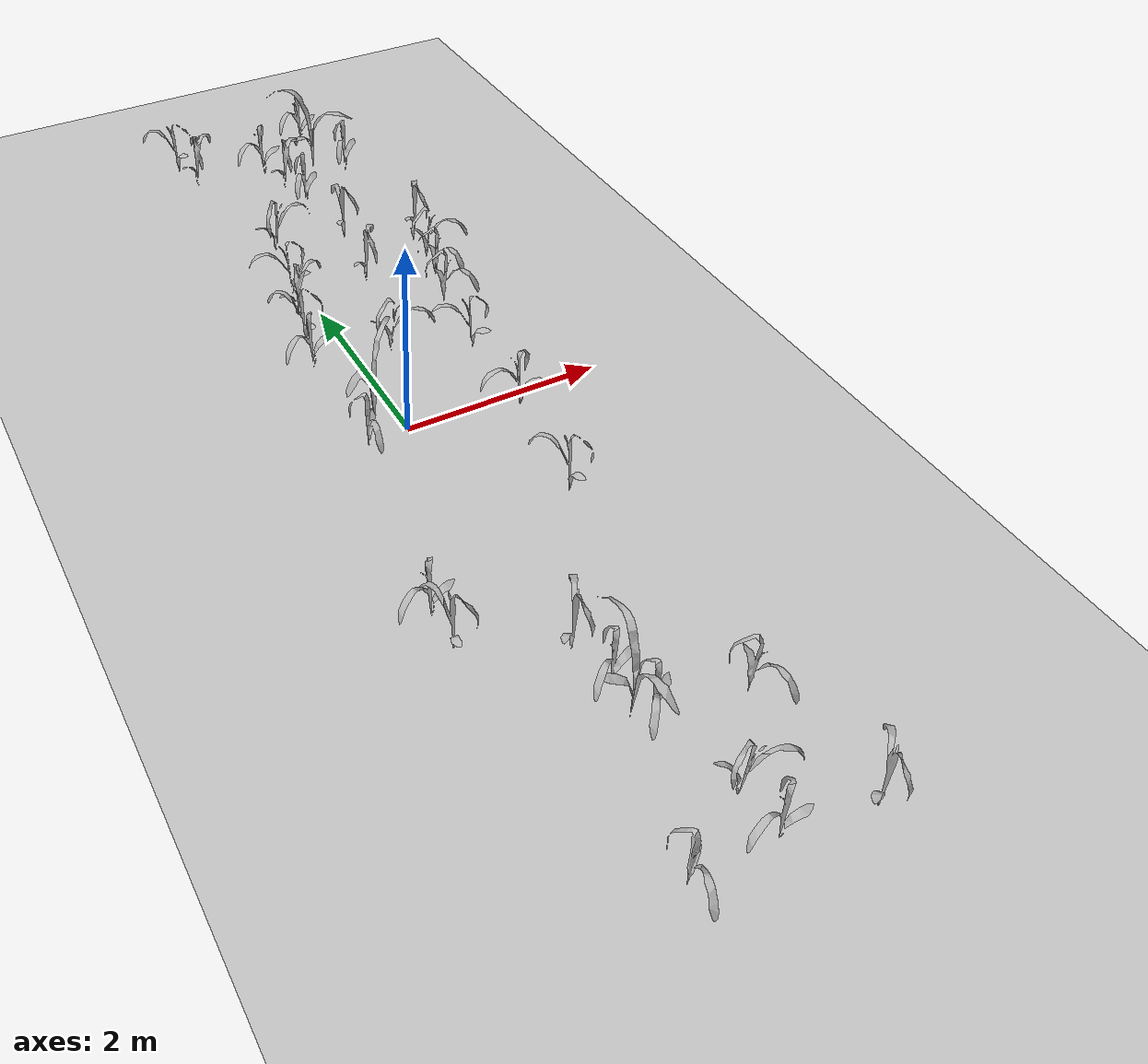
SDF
<sdf version="1.6">
 <world name="default">
  <light name="sun" type="directional">
   <pose>0 0 10 0 -0 0</pose>
   <diffuse>0.8 0.8 0.8 1</diffuse>
   <specular>0.2 0.2 0.2 1</specular>
   <attenuation>
    <range>1000</range>
    <constant>0.9</constant>
    <linear>0.01</linear>
    <quadratic>0.001</quadratic>
   </attenuation>
   <direction>-0.5 0.1 -0.9</direction>
  </light>
  <gravity>0 0 -9.8</gravity>
  <magnetic_field>6e-06 2.3e-05 -4.2e-05</magnetic_field>
  <atmosphere type="adiabatic"/>
  <physics name="default_physics" type="bullet">
   <max_step_size>0.005</max_step_size>
   <real_time_factor>1</real_time_factor>
   <real_time_update_rate>200</real_time_update_rate>
  </physics>
  <scene>
   <sky><clouds><speed>12</speed></clouds></sky>
   <ambient>0.4 0.4 0.4 1</ambient>
   <background>0.7 0.7 0.7 1</background>
   <grid>false</grid>
   <shadows>1</shadows>
  </scene>
  <audio><device>default</device></audio>
  <spherical_coordinates>
   <surface_model>EARTH_WGS84</surface_model>
   <latitude_deg>0</latitude_deg>
   <longitude_deg>0</longitude_deg>
   <elevation>0</elevation>
   <heading_deg>0</heading_deg>
  </spherical_coordinates>
  <model name="ground_plane">
   <static>1</static>
   <link name="link">
    <collision name="collision">
     <geometry><plane><normal>0 0 1</normal><size>100 100</size></plane></geometry>
     <surface><friction><ode><mu>100</mu><mu2>50</mu2></ode></friction></surface>
    </collision>
    <visual name="visual">
     <cast_shadows>0</cast_shadows>
     <geometry><plane><normal>0 0 1</normal><size>100 100</size></plane></geometry>
     <material>
      <script><uri>file://media/materials/scripts/gazebo.material</uri><name>Gazebo/Grey</name></script>
     </material>
    </visual>
   </link>
  </model>
  <include>
   <uri>model://maize_01</uri>
   <pose>-0.5500154331600338 -5.141135195292885 0.36303593836313763 0.0 0.0 5.209947210436918</pose>
   <name>maize_01_0000</name>
   <static>false</static>
  </include>
  <include>
   <uri>model://maize_01</uri>
   <pose>-0.9668280309684344 -2.7472610265769393 0.32275116974781093 0.0 0.0 2.5346908427779913</pose>
   <name>maize_01_0005</name>
   <static>false</static>
  </include>
  <include>
   <uri>model://maize_01</uri>
   <pose>-0.9523239106883734 -2.3424262620757297 0.3029211751083638 0.0 0.0 4.4319177878223135</pose>
   <name>maize_01_0006</name>
   <static>false</static>
  </include>
  <include>
   <uri>model://maize_01</uri>
   <pose>-0.5594920588038342 -0.35666909249792655 0.27338532518762454 0.0 0.0 5.350821036060122</pose>
   <name>maize_01_0011</name>
   <static>false</static>
  </include>
  <include>
   <uri>model://maize_01</uri>
   <pose>-0.537654332870448 0.9116338876996404 0.28963947421006914 0.0 0.0 4.518973893578035</pose>
   <name>maize_01_0013</name>
   <static>false</static>
  </include>
  <include>
   <uri>model://maize_01</uri>
   <pose>-0.4532733008960652 1.2931043089279275 0.28771390191114493 0.0 0.0 2.9091908868877328</pose>
   <name>maize_01_0014</name>
   <static>false</static>
  </include>
  <include>
   <uri>model://maize_01</uri>
   <pose>-0.3553334895532255 1.7185962669330366 0.2918574504744287 0.0 0.0 1.3669376090460634</pose>
   <name>maize_01_0015</name>
   <static>false</static>
  </include>
  <include>
   <uri>model://maize_01</uri>
   <pose>-0.25605811537106726 2.1045848667841685 0.27959248976343115 0.0 0.0 3.579798839722773</pose>
   <name>maize_01_0016</name>
   <static>false</static>
  </include>
  <include>
   <uri>model://maize_01</uri>
   <pose>-0.11510512554733643 2.8792742810428984 0.28413007931670853 0.0 0.0 0.9092102933347525</pose>
   <name>maize_01_0018</name>
   <static>false</static>
  </include>
  <include>
   <uri>model://maize_01</uri>
   <pose>-0.40809978787868495 4.479705713022996 0.3012698455970084 0.0 0.0 1.6256661955902545</pose>
   <name>maize_01_0019</name>
   <static>false</static>
  </include>
  <include>
   <uri>model://maize_01</uri>
   <pose>-0.5046300361684176 4.859604836677281 0.2838076028450088 0.0 0.0 3.105916745357151</pose>
   <name>maize_01_0020</name>
   <static>false</static>
  </include>
  <include>
   <uri>model://maize_01</uri>
   <pose>0.20878539575898525 -5.121871618376562 0.3277405661675043 0.0 0.0 4.213551975182381</pose>
   <name>maize_01_0022</name>
   <static>false</static>
  </include>
  <include>
   <uri>model://maize_01</uri>
   <pose>0.16411901894186476 -4.737761561894148 0.3402873515900249 0.0 0.0 0.4722637219584565</pose>
   <name>maize_01_0023</name>
   <static>false</static>
  </include>
  <include>
   <uri>model://maize_01</uri>
   <pose>0.0066307264752983935 -3.9276936219999965 0.3295009746464014 0.0 0.0 4.851703526707426</pose>
   <name>maize_01_0025</name>
   <static>false</static>
  </include>
  <include>
   <uri>model://maize_01</uri>
   <pose>-0.09460417080032035 -3.5556368730728853 0.33285560466130737 0.0 0.0 4.594952805971265</pose>
   <name>maize_01_0026</name>
   <static>false</static>
  </include>
  <include>
   <uri>model://maize_01</uri>
   <pose>-0.18041411147065223 -3.1478462695397336 0.3392474677267532 0.0 0.0 1.870098161084509</pose>
   <name>maize_01_0027</name>
   <static>false</static>
  </include>
  <include>
   <uri>model://maize_01</uri>
   <pose>0.2355748845936284 0.8259797997997931 0.2641341651964217 0.0 0.0 0.37999934857548096</pose>
   <name>maize_01_0035</name>
   <static>false</static>
  </include>
  <include>
   <uri>model://maize_01</uri>
   <pose>0.5103272851162947 1.9781640659004893 0.2741625145021261 0.0 0.0 1.7885546700434514</pose>
   <name>maize_01_0038</name>
   <static>false</static>
  </include>
  <include>
   <uri>model://maize_01</uri>
   <pose>0.6269960465714578 2.7934274544813413 0.2800595000545925 0.0 0.0 2.214661448359935</pose>
   <name>maize_01_0039</name>
   <static>false</static>
  </include>
  <include>
   <uri>model://maize_01</uri>
   <pose>0.5306757283110776 3.6070297756588094 0.28243793178299487 0.0 0.0 4.921177019933111</pose>
   <name>maize_01_0041</name>
   <static>false</static>
  </include>
  <include>
   <uri>model://maize_01</uri>
   <pose>0.44999743311761786 3.997233078723499 0.2829701052922617 0.0 0.0 1.632278441092173</pose>
   <name>maize_01_0042</name>
   <static>false</static>
  </include>
  <include>
   <uri>model://maize_01</uri>
   <pose>0.3387054812270657 4.3658101580256545 0.3003604631853961 0.0 0.0 4.443929771237465</pose>
   <name>maize_01_0043</name>
   <static>false</static>
  </include>
  <include>
   <uri>model://maize_01</uri>
   <pose>0.9554847863271879 -5.237827204454966 0.3277386991061946 0.0 0.0 1.6845231892213446</pose>
   <name>maize_01_0046</name>
   <static>false</static>
  </include>
  <include>
   <uri>model://maize_01</uri>
   <pose>0.7602421235504665 -4.055638144593002 0.33245172589634153 0.0 0.0 5.621548951328938</pose>
   <name>maize_01_0047</name>
   <static>false</static>
  </include>
  <include>
   <uri>model://maize_01</uri>
   <pose>0.7155853014059809 -1.648902821963332 0.3138023170239143 0.0 0.0 2.831252908005668</pose>
   <name>maize_01_0052</name>
   <static>false</static>
  </include>
  <include>
   <uri>model://maize_01</uri>
   <pose>0.9152277943668713 -0.4549758242124111 0.2881042343412796 0.0 0.0 3.9347262587292042</pose>
   <name>maize_01_0055</name>
   <static>false</static>
  </include>
  <include>
   <uri>model://maize_01</uri>
   <pose>0.9332286225497685 0.49997341378849147 0.26409177255161226 0.0 0.0 3.3259539659134068</pose>
   <name>maize_01_0056</name>
   <static>false</static>
  </include>
  <include>
   <uri>model://maize_01</uri>
   <pose>1.0436462071542938 1.2974628113157183 0.2604889749184584 0.0 0.0 5.950385102653529</pose>
   <name>maize_01_0058</name>
   <static>false</static>
  </include>
  <include>
   <uri>model://maize_01</uri>
   <pose>1.149273751384045 1.6926566017052525 0.2612594093252119 0.0 0.0 5.750546858308722</pose>
   <name>maize_01_0059</name>
   <static>false</static>
  </include>
  <include>
   <uri>model://maize_01</uri>
   <pose>1.2475702521424241 2.072880808467517 0.26684557733341735 0.0 0.0 0.17815820954646588</pose>
   <name>maize_01_0060</name>
   <static>false</static>
  </include>
  <include>
   <uri>model://maize_01</uri>
   <pose>1.325885744649833 2.510156753902509 0.2738729041703337 0.0 0.0 1.927221075878333</pose>
   <name>maize_01_0061</name>
   <static>false</static>
  </include>
  <include>
   <uri>model://maize_01</uri>
   <pose>1.20821316486631 4.0667909910356475 0.2863083726079228 0.0 0.0 4.944674457327797</pose>
   <name>maize_01_0064</name>
   <static>false</static>
  </include>
  <include>
   <uri>model://maize_01</uri>
   <pose>0.9965927226155655 4.868196179668782 0.2821351809160495 0.0 0.0 4.556860954706106</pose>
   <name>maize_01_0066</name>
   <static>false</static>
  </include>
  <model name="ghost_nettle_0000">
   <pose>-0.1442779408767697 -3.8752024104611267 0.3426186818451892 0.0 0.0 0.5550050073134652</pose>
   <static>true</static>
   <link name="nettle_0000_link">
    <visual name="visual">
     <geometry><mesh><uri>model://nettle/meshes/nettle.dae</uri></mesh></geometry>
     <material>
      <script>
       <uri>model://nettle/materials/scripts/</uri>
       <uri>model://nettle/materials/textures/</uri>
       <name>nettle_leaf</name>
      </script>
     </material>
    </visual>
   </link>
  </model>
  <model name="ghost_nettle_0001">
   <pose>-0.36015940771301824 -0.04781792252925298 0.28344469581309556 0.0 0.0 6.043150319920157</pose>
   <static>true</static>
   <link name="nettle_0001_link">
    <visual name="visual">
     <geometry><mesh><uri>model://nettle/meshes/nettle.dae</uri></mesh></geometry>
     <material>
      <script>
       <uri>model://nettle/materials/scripts/</uri>
       <uri>model://nettle/materials/textures/</uri>
       <name>nettle_leaf</name>
      </script>
     </material>
    </visual>
   </link>
  </model>
  <model name="ghost_nettle_0002">
   <pose>0.9107012563171376 4.304613868955046 0.2853060825860662 0.0 0.0 1.400785054286948</pose>
   <static>true</static>
   <link name="nettle_0002_link">
    <visual name="visual">
     <geometry><mesh><uri>model://nettle/meshes/nettle.dae</uri></mesh></geometry>
     <material>
      <script>
       <uri>model://nettle/materials/scripts/</uri>
       <uri>model://nettle/materials/textures/</uri>
       <name>nettle_leaf</name>
      </script>
     </material>
    </visual>
   </link>
  </model>
 </world>
</sdf>

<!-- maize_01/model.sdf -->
<sdf version="1.6">
  <model name='maize_01'>
    <pose frame=''>0 0 0.05 0 -0 0</pose>
    <link name='maize_01_link'>
      <inertial>
        <pose>0 0 0.01 0 0 0</pose>
        <mass>0.3</mass>
        <inertia>
          <ixx>0.0033416667</ixx>
          <ixy>0</ixy>
          <ixz>0</ixz>
          <iyy>0.0033416667</iyy>
          <iyz>0</iyz>
          <izz>0.000016666667</izz>
        </inertia>
        <pose>0 0 0.1 0 0 0</pose>
      </inertial>
      <collision name='collision'>
        <pose>0 0 0.2 0 -0 0</pose>
        <geometry>
          <box>
            <size>0.02 0.02 0.4</size>
          </box>
        </geometry>
        <max_contacts>10</max_contacts>
        <surface>
          <contact>
            <ode/>
          </contact>
          <bounce/>
          <friction>
            <ode>
              <mu>10</mu>
              <mu2>10</mu2>
            </ode>
          </friction>
        </surface>
      </collision>
      <visual name='visual'>
        <geometry>
          <mesh>
            <uri>model://maize_01/meshes/maize_01.dae</uri>
            <scale>0.683166466464586 0.683166466464586 0.683166466464586</scale>
          </mesh>
        </geometry>
      </visual>
      <self_collide>0</self_collide>
      <enable_wind>0</enable_wind>
      <kinematic>0</kinematic>
    </link>
  </model>
</sdf>
